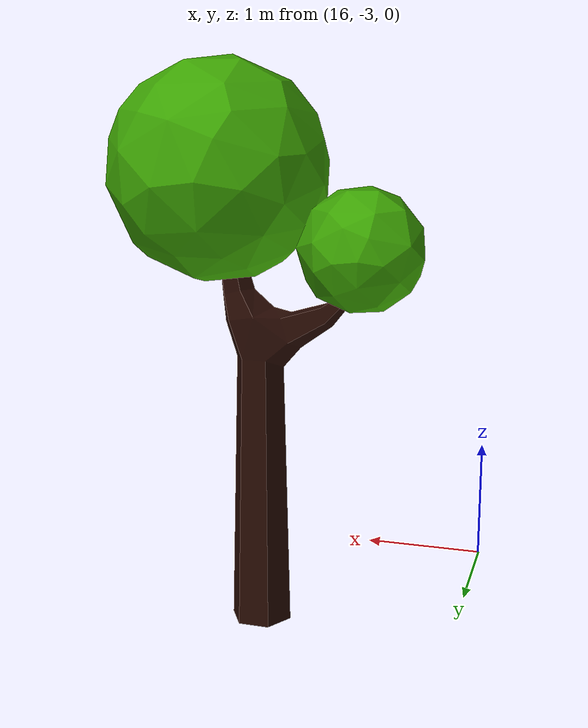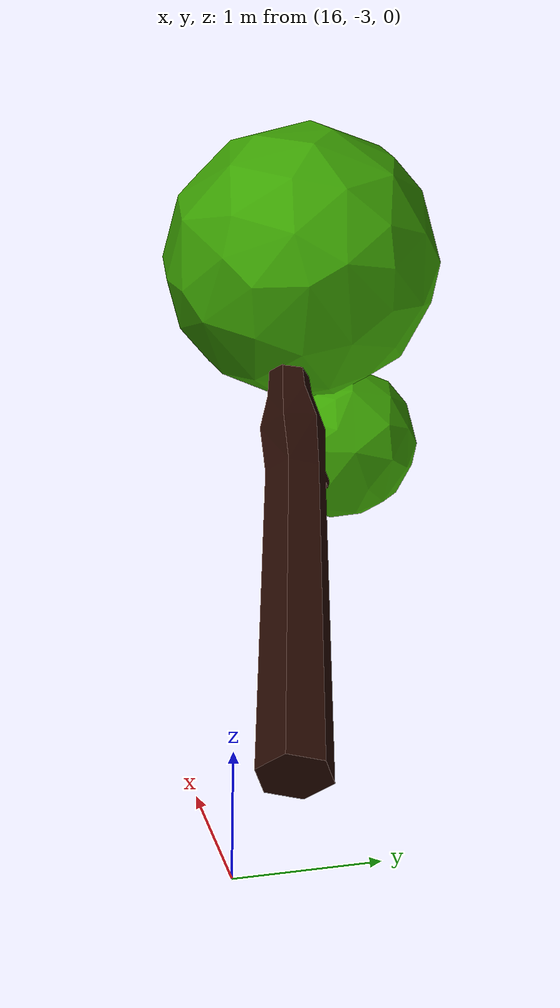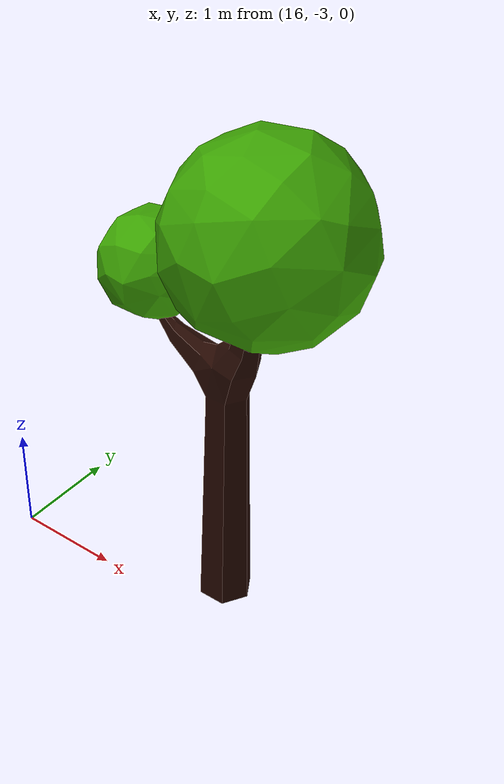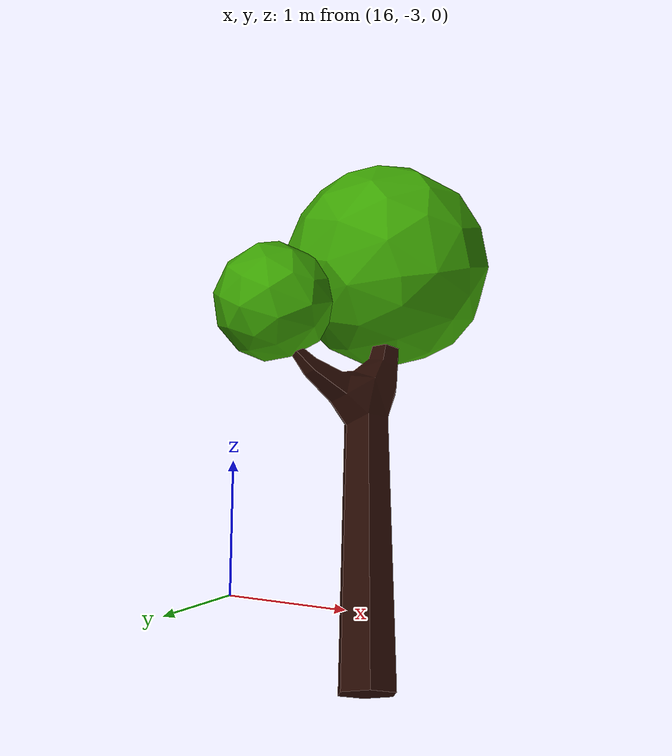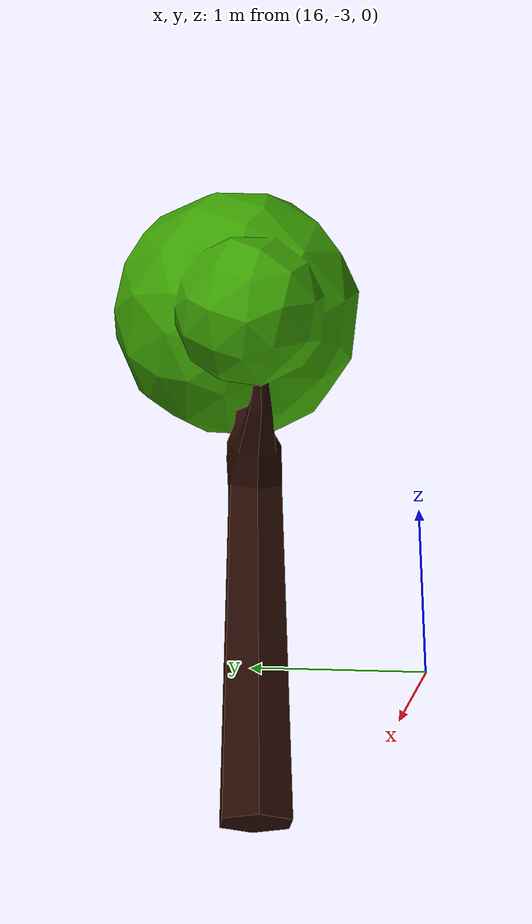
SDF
<sdf version="1.7">
<model name="lowpolytree_5">
    <static>true</static>
    <link name="lowpolytree_5">
        <pose>0 0 0 0 0 0</pose>
        <collision name="lowpolytree_5_collision">
            <geometry>
                <mesh>
                    <uri>model://lowpolytree_5/meshes/lowpolytree_5.dae</uri>
                </mesh>
            </geometry>
        </collision>
        <visual name="lowpolytree_5_visual">
            <geometry>
                <mesh>
                    <uri>model://lowpolytree_5/meshes/lowpolytree_5.dae</uri>
                </mesh>
            </geometry>
        </visual>
    </link>
</model>
</sdf>
